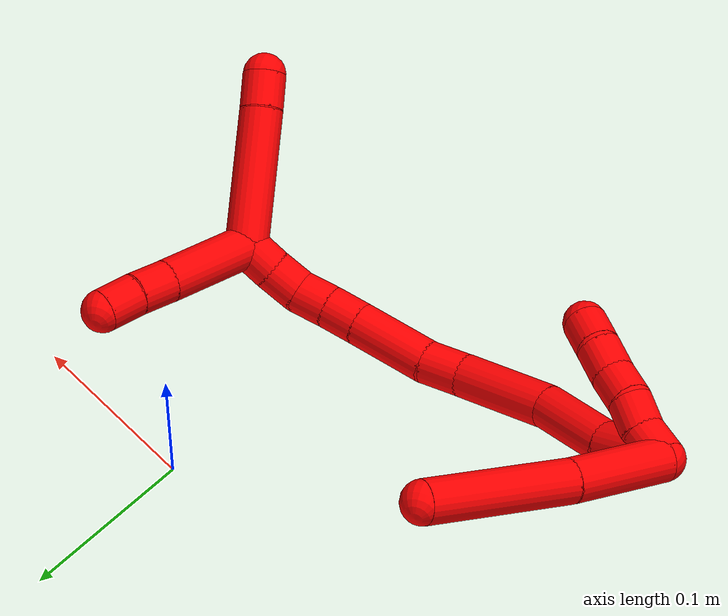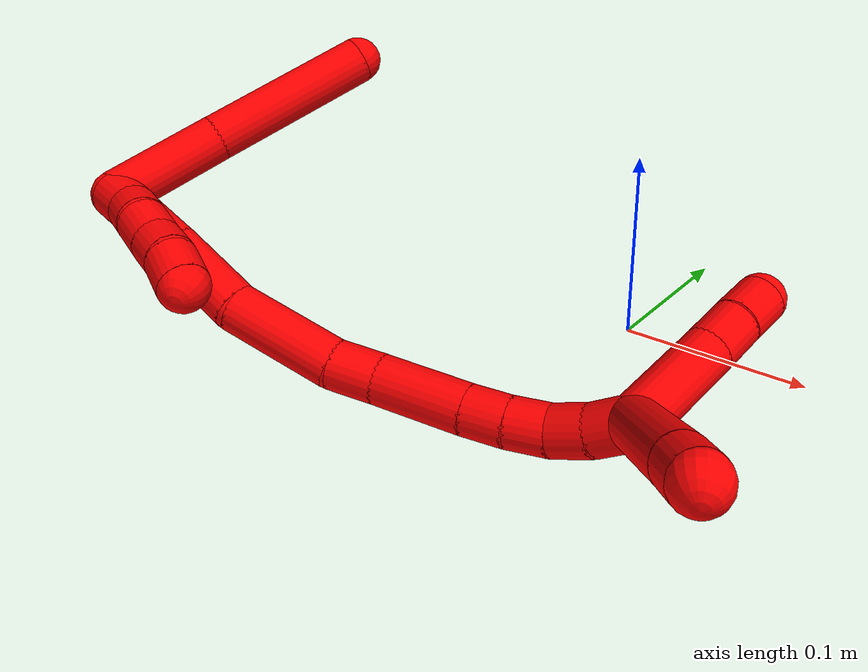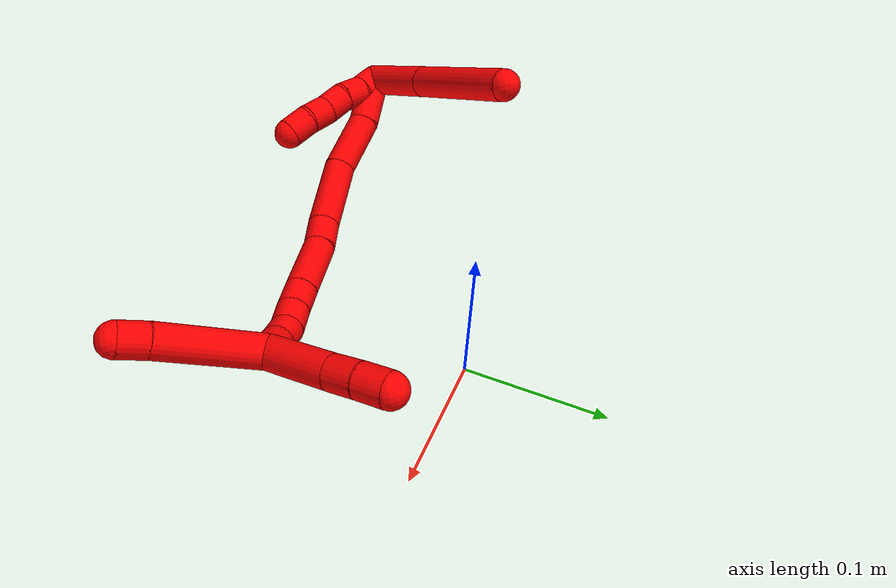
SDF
<sdf version="1.7">
 <world name="default">
  <model name="2">
   <static>0</static>
   <link name="2">
    <collision name="collision-cylinder-e_1_2_8">
     <pose>0.016396 0.013395 -0.021175 -2.57755 0.579421 -1.59921</pose>
     <geometry><cylinder><radius>0.0125</radius><length>0.059888</length></cylinder></geometry>
     <surface>
      <friction><ode><mu>1.16</mu><mu2>1.16</mu2><slip1>0</slip1><slip2>0</slip2></ode></friction>
      <contact><ode><kp>1e+06</kp><kd>1</kd><max_vel>0</max_vel><min_depth>0.001</min_depth></ode></contact>
     </surface>
    </collision>
    <visual name="visual-cylinder-e_1_2_8">
     <pose>0.016396 0.013395 -0.021175 -2.57755 0.579421 -1.59921</pose>
     <geometry><cylinder><radius>0.0125</radius><length>0.059888</length></cylinder></geometry>
     <material><ambient>1 0 0 1</ambient></material>
    </visual>
    <collision name="collision-cylinder-e_2_8_6">
     <pose>0.058533 0.049153 -0.071801 -2.49217 0.608131 -1.50062</pose>
     <geometry><cylinder><radius>0.0125</radius><length>0.090112</length></cylinder></geometry>
     <surface>
      <friction><ode><mu>1.16</mu><mu2>1.16</mu2><slip1>0</slip1><slip2>0</slip2></ode></friction>
      <contact><ode><kp>1e+06</kp><kd>1</kd><max_vel>0</max_vel><min_depth>0.001</min_depth></ode></contact>
     </surface>
    </collision>
    <visual name="visual-cylinder-e_2_8_6">
     <pose>0.058533 0.049153 -0.071801 -2.49217 0.608131 -1.50062</pose>
     <geometry><cylinder><radius>0.0125</radius><length>0.090112</length></cylinder></geometry>
     <material><ambient>1 0 0 1</ambient></material>
    </visual>
    <collision name="collision-cylinder-e_1_2_9">
     <pose>0.006721 0.003595 0.006473 -0.506911 0.737066 -0.199396</pose>
     <geometry><cylinder><radius>0.0125</radius><length>0.02</length></cylinder></geometry>
     <surface>
      <friction><ode><mu>1.16</mu><mu2>1.16</mu2><slip1>0</slip1><slip2>0</slip2></ode></friction>
      <contact><ode><kp>1e+06</kp><kd>1</kd><max_vel>0</max_vel><min_depth>0.001</min_depth></ode></contact>
     </surface>
    </collision>
    <visual name="visual-cylinder-e_1_2_9">
     <pose>0.006721 0.003595 0.006473 -0.506911 0.737066 -0.199396</pose>
     <geometry><cylinder><radius>0.0125</radius><length>0.02</length></cylinder></geometry>
     <material><ambient>1 0 0 1</ambient></material>
    </visual>
    <collision name="collision-cylinder-e_2_9_10">
     <pose>0.018233 0.011485 0.020602 -0.511314 0.4996 -0.133172</pose>
     <geometry><cylinder><radius>0.0125</radius><length>0.02</length></cylinder></geometry>
     <surface>
      <friction><ode><mu>1.16</mu><mu2>1.16</mu2><slip1>0</slip1><slip2>0</slip2></ode></friction>
      <contact><ode><kp>1e+06</kp><kd>1</kd><max_vel>0</max_vel><min_depth>0.001</min_depth></ode></contact>
     </surface>
    </collision>
    <visual name="visual-cylinder-e_2_9_10">
     <pose>0.018233 0.011485 0.020602 -0.511314 0.4996 -0.133172</pose>
     <geometry><cylinder><radius>0.0125</radius><length>0.02</length></cylinder></geometry>
     <material><ambient>1 0 0 1</ambient></material>
    </visual>
    <collision name="collision-cylinder-e_3_10_11">
     <pose>0.029371 0.018168 0.035606 -0.31427 0.68766 -0.113339</pose>
     <geometry><cylinder><radius>0.0125</radius><length>0.02</length></cylinder></geometry>
     <surface>
      <friction><ode><mu>1.16</mu><mu2>1.16</mu2><slip1>0</slip1><slip2>0</slip2></ode></friction>
      <contact><ode><kp>1e+06</kp><kd>1</kd><max_vel>0</max_vel><min_depth>0.001</min_depth></ode></contact>
     </surface>
    </collision>
    <visual name="visual-cylinder-e_3_10_11">
     <pose>0.029371 0.018168 0.035606 -0.31427 0.68766 -0.113339</pose>
     <geometry><cylinder><radius>0.0125</radius><length>0.02</length></cylinder></geometry>
     <material><ambient>1 0 0 1</ambient></material>
    </visual>
    <collision name="collision-cylinder-e_4_11_12">
     <pose>0.041312 0.024272 0.050365 -0.464685 0.59357 -0.14447</pose>
     <geometry><cylinder><radius>0.0125</radius><length>0.02</length></cylinder></geometry>
     <surface>
      <friction><ode><mu>1.16</mu><mu2>1.16</mu2><slip1>0</slip1><slip2>0</slip2></ode></friction>
      <contact><ode><kp>1e+06</kp><kd>1</kd><max_vel>0</max_vel><min_depth>0.001</min_depth></ode></contact>
     </surface>
    </collision>
    <visual name="visual-cylinder-e_4_11_12">
     <pose>0.041312 0.024272 0.050365 -0.464685 0.59357 -0.14447</pose>
     <geometry><cylinder><radius>0.0125</radius><length>0.02</length></cylinder></geometry>
     <material><ambient>1 0 0 1</ambient></material>
    </visual>
    <collision name="collision-cylinder-e_5_12_5">
     <pose>0.05277 0.029566 0.065719 -0.196264 0.626775 -0.063786</pose>
     <geometry><cylinder><radius>0.0125</radius><length>0.02</length></cylinder></geometry>
     <surface>
      <friction><ode><mu>1.16</mu><mu2>1.16</mu2><slip1>0</slip1><slip2>0</slip2></ode></friction>
      <contact><ode><kp>1e+06</kp><kd>1</kd><max_vel>0</max_vel><min_depth>0.001</min_depth></ode></contact>
     </surface>
    </collision>
    <visual name="visual-cylinder-e_5_12_5">
     <pose>0.05277 0.029566 0.065719 -0.196264 0.626775 -0.063786</pose>
     <geometry><cylinder><radius>0.0125</radius><length>0.02</length></cylinder></geometry>
     <material><ambient>1 0 0 1</ambient></material>
    </visual>
    <collision name="collision-cylinder-e_1_2_13">
     <pose>0.019752 -0.00187 0.007773 0.236119 1.18618 0.159558</pose>
     <geometry><cylinder><radius>0.0125</radius><length>0.042617</length></cylinder></geometry>
     <surface>
      <friction><ode><mu>1.16</mu><mu2>1.16</mu2><slip1>0</slip1><slip2>0</slip2></ode></friction>
      <contact><ode><kp>1e+06</kp><kd>1</kd><max_vel>0</max_vel><min_depth>0.001</min_depth></ode></contact>
     </surface>
    </collision>
    <visual name="visual-cylinder-e_1_2_13">
     <pose>0.019752 -0.00187 0.007773 0.236119 1.18618 0.159558</pose>
     <geometry><cylinder><radius>0.0125</radius><length>0.042617</length></cylinder></geometry>
     <material><ambient>1 0 0 1</ambient></material>
    </visual>
    <collision name="collision-cylinder-e_2_13_14">
     <pose>0.060249 -0.002413 0.028186 -0.104635 1.02117 -0.058645</pose>
     <geometry><cylinder><radius>0.0125</radius><length>0.048657</length></cylinder></geometry>
     <surface>
      <friction><ode><mu>1.16</mu><mu2>1.16</mu2><slip1>0</slip1><slip2>0</slip2></ode></friction>
      <contact><ode><kp>1e+06</kp><kd>1</kd><max_vel>0</max_vel><min_depth>0.001</min_depth></ode></contact>
     </surface>
    </collision>
    <visual name="visual-cylinder-e_2_13_14">
     <pose>0.060249 -0.002413 0.028186 -0.104635 1.02117 -0.058645</pose>
     <geometry><cylinder><radius>0.0125</radius><length>0.048657</length></cylinder></geometry>
     <material><ambient>1 0 0 1</ambient></material>
    </visual>
    <collision name="collision-cylinder-e_3_14_15">
     <pose>0.108156 0.002581 0.049589 -0.396207 1.2343 -0.282989</pose>
     <geometry><cylinder><radius>0.0125</radius><length>0.05755</length></cylinder></geometry>
     <surface>
      <friction><ode><mu>1.16</mu><mu2>1.16</mu2><slip1>0</slip1><slip2>0</slip2></ode></friction>
      <contact><ode><kp>1e+06</kp><kd>1</kd><max_vel>0</max_vel><min_depth>0.001</min_depth></ode></contact>
     </surface>
    </collision>
    <visual name="visual-cylinder-e_3_14_15">
     <pose>0.108156 0.002581 0.049589 -0.396207 1.2343 -0.282989</pose>
     <geometry><cylinder><radius>0.0125</radius><length>0.05755</length></cylinder></geometry>
     <material><ambient>1 0 0 1</ambient></material>
    </visual>
    <collision name="collision-cylinder-e_4_15_16">
     <pose>0.146621 0.009611 0.06048 -1.00729 1.23234 -0.744092</pose>
     <geometry><cylinder><radius>0.0125</radius><length>0.023969</length></cylinder></geometry>
     <surface>
      <friction><ode><mu>1.16</mu><mu2>1.16</mu2><slip1>0</slip1><slip2>0</slip2></ode></friction>
      <contact><ode><kp>1e+06</kp><kd>1</kd><max_vel>0</max_vel><min_depth>0.001</min_depth></ode></contact>
     </surface>
    </collision>
    <visual name="visual-cylinder-e_4_15_16">
     <pose>0.146621 0.009611 0.06048 -1.00729 1.23234 -0.744092</pose>
     <geometry><cylinder><radius>0.0125</radius><length>0.023969</length></cylinder></geometry>
     <material><ambient>1 0 0 1</ambient></material>
    </visual>
    <collision name="collision-cylinder-e_5_16_17">
     <pose>0.17833 0.021615 0.069415 -0.903333 1.07631 -0.563728</pose>
     <geometry><cylinder><radius>0.0125</radius><length>0.046361</length></cylinder></geometry>
     <surface>
      <friction><ode><mu>1.16</mu><mu2>1.16</mu2><slip1>0</slip1><slip2>0</slip2></ode></friction>
      <contact><ode><kp>1e+06</kp><kd>1</kd><max_vel>0</max_vel><min_depth>0.001</min_depth></ode></contact>
     </surface>
    </collision>
    <visual name="visual-cylinder-e_5_16_17">
     <pose>0.17833 0.021615 0.069415 -0.903333 1.07631 -0.563728</pose>
     <geometry><cylinder><radius>0.0125</radius><length>0.046361</length></cylinder></geometry>
     <material><ambient>1 0 0 1</ambient></material>
    </visual>
    <collision name="collision-cylinder-e_6_17_18">
     <pose>0.207812 0.034421 0.078935 -0.993883 1.06993 -0.621929</pose>
     <geometry><cylinder><radius>0.0125</radius><length>0.020699</length></cylinder></geometry>
     <surface>
      <friction><ode><mu>1.16</mu><mu2>1.16</mu2><slip1>0</slip1><slip2>0</slip2></ode></friction>
      <contact><ode><kp>1e+06</kp><kd>1</kd><max_vel>0</max_vel><min_depth>0.001</min_depth></ode></contact>
     </surface>
    </collision>
    <visual name="visual-cylinder-e_6_17_18">
     <pose>0.207812 0.034421 0.078935 -0.993883 1.06993 -0.621929</pose>
     <geometry><cylinder><radius>0.0125</radius><length>0.020699</length></cylinder></geometry>
     <material><ambient>1 0 0 1</ambient></material>
    </visual>
    <collision name="collision-cylinder-e_7_18_19">
     <pose>0.225692 0.043078 0.083523 -1.1749 1.0656 -0.748315</pose>
     <geometry><cylinder><radius>0.0125</radius><length>0.020117</length></cylinder></geometry>
     <surface>
      <friction><ode><mu>1.16</mu><mu2>1.16</mu2><slip1>0</slip1><slip2>0</slip2></ode></friction>
      <contact><ode><kp>1e+06</kp><kd>1</kd><max_vel>0</max_vel><min_depth>0.001</min_depth></ode></contact>
     </surface>
    </collision>
    <visual name="visual-cylinder-e_7_18_19">
     <pose>0.225692 0.043078 0.083523 -1.1749 1.0656 -0.748315</pose>
     <geometry><cylinder><radius>0.0125</radius><length>0.020117</length></cylinder></geometry>
     <material><ambient>1 0 0 1</ambient></material>
    </visual>
    <collision name="collision-cylinder-e_8_19_20">
     <pose>0.241419 0.054499 0.087436 -1.28511 0.764353 -0.584494</pose>
     <geometry><cylinder><radius>0.0125</radius><length>0.020011</length></cylinder></geometry>
     <surface>
      <friction><ode><mu>1.16</mu><mu2>1.16</mu2><slip1>0</slip1><slip2>0</slip2></ode></friction>
      <contact><ode><kp>1e+06</kp><kd>1</kd><max_vel>0</max_vel><min_depth>0.001</min_depth></ode></contact>
     </surface>
    </collision>
    <visual name="visual-cylinder-e_8_19_20">
     <pose>0.241419 0.054499 0.087436 -1.28511 0.764353 -0.584494</pose>
     <geometry><cylinder><radius>0.0125</radius><length>0.020011</length></cylinder></geometry>
     <material><ambient>1 0 0 1</ambient></material>
    </visual>
    <collision name="collision-cylinder-e_9_20_1">
     <pose>0.254105 0.069507 0.090789 -1.4091 0.613369 -0.525942</pose>
     <geometry><cylinder><radius>0.0125</radius><length>0.020018</length></cylinder></geometry>
     <surface>
      <friction><ode><mu>1.16</mu><mu2>1.16</mu2><slip1>0</slip1><slip2>0</slip2></ode></friction>
      <contact><ode><kp>1e+06</kp><kd>1</kd><max_vel>0</max_vel><min_depth>0.001</min_depth></ode></contact>
     </surface>
    </collision>
    <visual name="visual-cylinder-e_9_20_1">
     <pose>0.254105 0.069507 0.090789 -1.4091 0.613369 -0.525942</pose>
     <geometry><cylinder><radius>0.0125</radius><length>0.020018</length></cylinder></geometry>
     <material><ambient>1 0 0 1</ambient></material>
    </visual>
    <collision name="collision-cylinder-e_1_1_21">
     <pose>0.257819 0.101583 0.123468 -0.653164 -0.05179 0.017545</pose>
     <geometry><cylinder><radius>0.0125</radius><length>0.079086</length></cylinder></geometry>
     <surface>
      <friction><ode><mu>1.16</mu><mu2>1.16</mu2><slip1>0</slip1><slip2>0</slip2></ode></friction>
      <contact><ode><kp>1e+06</kp><kd>1</kd><max_vel>0</max_vel><min_depth>0.001</min_depth></ode></contact>
     </surface>
    </collision>
    <visual name="visual-cylinder-e_1_1_21">
     <pose>0.257819 0.101583 0.123468 -0.653164 -0.05179 0.017545</pose>
     <geometry><cylinder><radius>0.0125</radius><length>0.079086</length></cylinder></geometry>
     <material><ambient>1 0 0 1</ambient></material>
    </visual>
    <collision name="collision-cylinder-e_2_21_4">
     <pose>0.255792 0.131466 0.163473 -0.597826 0.001885 -0.000581</pose>
     <geometry><cylinder><radius>0.0125</radius><length>0.020914</length></cylinder></geometry>
     <surface>
      <friction><ode><mu>1.16</mu><mu2>1.16</mu2><slip1>0</slip1><slip2>0</slip2></ode></friction>
      <contact><ode><kp>1e+06</kp><kd>1</kd><max_vel>0</max_vel><min_depth>0.001</min_depth></ode></contact>
     </surface>
    </collision>
    <visual name="visual-cylinder-e_2_21_4">
     <pose>0.255792 0.131466 0.163473 -0.597826 0.001885 -0.000581</pose>
     <geometry><cylinder><radius>0.0125</radius><length>0.020914</length></cylinder></geometry>
     <material><ambient>1 0 0 1</ambient></material>
    </visual>
    <collision name="collision-cylinder-e_1_1_22">
     <pose>0.273446 0.085734 0.069251 -2.79907 0.510205 -1.97037</pose>
     <geometry><cylinder><radius>0.0125</radius><length>0.055613</length></cylinder></geometry>
     <surface>
      <friction><ode><mu>1.16</mu><mu2>1.16</mu2><slip1>0</slip1><slip2>0</slip2></ode></friction>
      <contact><ode><kp>1e+06</kp><kd>1</kd><max_vel>0</max_vel><min_depth>0.001</min_depth></ode></contact>
     </surface>
    </collision>
    <visual name="visual-cylinder-e_1_1_22">
     <pose>0.273446 0.085734 0.069251 -2.79907 0.510205 -1.97037</pose>
     <geometry><cylinder><radius>0.0125</radius><length>0.055613</length></cylinder></geometry>
     <material><ambient>1 0 0 1</ambient></material>
    </visual>
    <collision name="collision-cylinder-e_2_22_23">
     <pose>0.2923 0.097576 0.037153 -2.76153 0.487307 -1.82451</pose>
     <geometry><cylinder><radius>0.0125</radius><length>0.022528</length></cylinder></geometry>
     <surface>
      <friction><ode><mu>1.16</mu><mu2>1.16</mu2><slip1>0</slip1><slip2>0</slip2></ode></friction>
      <contact><ode><kp>1e+06</kp><kd>1</kd><max_vel>0</max_vel><min_depth>0.001</min_depth></ode></contact>
     </surface>
    </collision>
    <visual name="visual-cylinder-e_2_22_23">
     <pose>0.2923 0.097576 0.037153 -2.76153 0.487307 -1.82451</pose>
     <geometry><cylinder><radius>0.0125</radius><length>0.022528</length></cylinder></geometry>
     <material><ambient>1 0 0 1</ambient></material>
    </visual>
    <collision name="collision-cylinder-e_3_23_3">
     <pose>0.302953 0.103933 0.018776 -2.85779 0.514529 -2.14669</pose>
     <geometry><cylinder><radius>0.0125</radius><length>0.021859</length></cylinder></geometry>
     <surface>
      <friction><ode><mu>1.16</mu><mu2>1.16</mu2><slip1>0</slip1><slip2>0</slip2></ode></friction>
      <contact><ode><kp>1e+06</kp><kd>1</kd><max_vel>0</max_vel><min_depth>0.001</min_depth></ode></contact>
     </surface>
    </collision>
    <visual name="visual-cylinder-e_3_23_3">
     <pose>0.302953 0.103933 0.018776 -2.85779 0.514529 -2.14669</pose>
     <geometry><cylinder><radius>0.0125</radius><length>0.021859</length></cylinder></geometry>
     <material><ambient>1 0 0 1</ambient></material>
    </visual>
    <collision name="collision-sphere-3">
     <pose>0.308331 0.106597 0.009642 0 -0 0</pose>
     <geometry><sphere><radius>0.0125</radius></sphere></geometry>
     <surface>
      <friction><ode><mu>1.16</mu><mu2>1.16</mu2><slip1>0</slip1><slip2>0</slip2></ode></friction>
      <contact><ode><kp>1e+06</kp><kd>1</kd><max_vel>0</max_vel><min_depth>0.001</min_depth></ode></contact>
     </surface>
    </collision>
    <visual name="visual-sphere-3">
     <pose>0.308331 0.106597 0.009642 0 -0 0</pose>
     <geometry><sphere><radius>0.0125</radius></sphere></geometry>
     <material><ambient>1 0 0 1</ambient></material>
    </visual>
    <collision name="collision-sphere-23">
     <pose>0.297574 0.101269 0.02791 0 -0 0</pose>
     <geometry><sphere><radius>0.0125</radius></sphere></geometry>
     <surface>
      <friction><ode><mu>1.16</mu><mu2>1.16</mu2><slip1>0</slip1><slip2>0</slip2></ode></friction>
      <contact><ode><kp>1e+06</kp><kd>1</kd><max_vel>0</max_vel><min_depth>0.001</min_depth></ode></contact>
     </surface>
    </collision>
    <visual name="visual-sphere-23">
     <pose>0.297574 0.101269 0.02791 0 -0 0</pose>
     <geometry><sphere><radius>0.0125</radius></sphere></geometry>
     <material><ambient>1 0 0 1</ambient></material>
    </visual>
    <collision name="collision-sphere-22">
     <pose>0.287025 0.093884 0.046396 0 -0 0</pose>
     <geometry><sphere><radius>0.0125</radius></sphere></geometry>
     <surface>
      <friction><ode><mu>1.16</mu><mu2>1.16</mu2><slip1>0</slip1><slip2>0</slip2></ode></friction>
      <contact><ode><kp>1e+06</kp><kd>1</kd><max_vel>0</max_vel><min_depth>0.001</min_depth></ode></contact>
     </surface>
    </collision>
    <visual name="visual-sphere-22">
     <pose>0.287025 0.093884 0.046396 0 -0 0</pose>
     <geometry><sphere><radius>0.0125</radius></sphere></geometry>
     <material><ambient>1 0 0 1</ambient></material>
    </visual>
    <collision name="collision-sphere-4">
     <pose>0.255812 0.137352 0.172116 0 -0 0</pose>
     <geometry><sphere><radius>0.0125</radius></sphere></geometry>
     <surface>
      <friction><ode><mu>1.16</mu><mu2>1.16</mu2><slip1>0</slip1><slip2>0</slip2></ode></friction>
      <contact><ode><kp>1e+06</kp><kd>1</kd><max_vel>0</max_vel><min_depth>0.001</min_depth></ode></contact>
     </surface>
    </collision>
    <visual name="visual-sphere-4">
     <pose>0.255812 0.137352 0.172116 0 -0 0</pose>
     <geometry><sphere><radius>0.0125</radius></sphere></geometry>
     <material><ambient>1 0 0 1</ambient></material>
    </visual>
    <collision name="collision-sphere-21">
     <pose>0.255772 0.125581 0.154829 0 -0 0</pose>
     <geometry><sphere><radius>0.0125</radius></sphere></geometry>
     <surface>
      <friction><ode><mu>1.16</mu><mu2>1.16</mu2><slip1>0</slip1><slip2>0</slip2></ode></friction>
      <contact><ode><kp>1e+06</kp><kd>1</kd><max_vel>0</max_vel><min_depth>0.001</min_depth></ode></contact>
     </surface>
    </collision>
    <visual name="visual-sphere-21">
     <pose>0.255772 0.125581 0.154829 0 -0 0</pose>
     <geometry><sphere><radius>0.0125</radius></sphere></geometry>
     <material><ambient>1 0 0 1</ambient></material>
    </visual>
    <collision name="collision-sphere-1">
     <pose>0.259866 0.077585 0.092106 0 -0 0</pose>
     <geometry><sphere><radius>0.0125</radius></sphere></geometry>
     <surface>
      <friction><ode><mu>1.16</mu><mu2>1.16</mu2><slip1>0</slip1><slip2>0</slip2></ode></friction>
      <contact><ode><kp>1e+06</kp><kd>1</kd><max_vel>0</max_vel><min_depth>0.001</min_depth></ode></contact>
     </surface>
    </collision>
    <visual name="visual-sphere-1">
     <pose>0.259866 0.077585 0.092106 0 -0 0</pose>
     <geometry><sphere><radius>0.0125</radius></sphere></geometry>
     <material><ambient>1 0 0 1</ambient></material>
    </visual>
    <collision name="collision-sphere-11">
     <pose>0.035718 0.020557 0.042955 0 -0 0</pose>
     <geometry><sphere><radius>0.0125</radius></sphere></geometry>
     <surface>
      <friction><ode><mu>1.16</mu><mu2>1.16</mu2><slip1>0</slip1><slip2>0</slip2></ode></friction>
      <contact><ode><kp>1e+06</kp><kd>1</kd><max_vel>0</max_vel><min_depth>0.001</min_depth></ode></contact>
     </surface>
    </collision>
    <visual name="visual-sphere-11">
     <pose>0.035718 0.020557 0.042955 0 -0 0</pose>
     <geometry><sphere><radius>0.0125</radius></sphere></geometry>
     <material><ambient>1 0 0 1</ambient></material>
    </visual>
    <collision name="collision-sphere-10">
     <pose>0.023024 0.01578 0.028257 0 -0 0</pose>
     <geometry><sphere><radius>0.0125</radius></sphere></geometry>
     <surface>
      <friction><ode><mu>1.16</mu><mu2>1.16</mu2><slip1>0</slip1><slip2>0</slip2></ode></friction>
      <contact><ode><kp>1e+06</kp><kd>1</kd><max_vel>0</max_vel><min_depth>0.001</min_depth></ode></contact>
     </surface>
    </collision>
    <visual name="visual-sphere-10">
     <pose>0.023024 0.01578 0.028257 0 -0 0</pose>
     <geometry><sphere><radius>0.0125</radius></sphere></geometry>
     <material><ambient>1 0 0 1</ambient></material>
    </visual>
    <collision name="collision-sphere-6">
     <pose>0.084275 0.071515 -0.101252 0 -0 0</pose>
     <geometry><sphere><radius>0.0125</radius></sphere></geometry>
     <surface>
      <friction><ode><mu>1.16</mu><mu2>1.16</mu2><slip1>0</slip1><slip2>0</slip2></ode></friction>
      <contact><ode><kp>1e+06</kp><kd>1</kd><max_vel>0</max_vel><min_depth>0.001</min_depth></ode></contact>
     </surface>
    </collision>
    <visual name="visual-sphere-6">
     <pose>0.084275 0.071515 -0.101252 0 -0 0</pose>
     <geometry><sphere><radius>0.0125</radius></sphere></geometry>
     <material><ambient>1 0 0 1</ambient></material>
    </visual>
    <collision name="collision-sphere-9">
     <pose>0.013442 0.007189 0.012947 0 -0 0</pose>
     <geometry><sphere><radius>0.0125</radius></sphere></geometry>
     <surface>
      <friction><ode><mu>1.16</mu><mu2>1.16</mu2><slip1>0</slip1><slip2>0</slip2></ode></friction>
      <contact><ode><kp>1e+06</kp><kd>1</kd><max_vel>0</max_vel><min_depth>0.001</min_depth></ode></contact>
     </surface>
    </collision>
    <visual name="visual-sphere-9">
     <pose>0.013442 0.007189 0.012947 0 -0 0</pose>
     <geometry><sphere><radius>0.0125</radius></sphere></geometry>
     <material><ambient>1 0 0 1</ambient></material>
    </visual>
    <collision name="collision-sphere-2">
     <geometry><sphere><radius>0.0125</radius></sphere></geometry>
     <surface>
      <friction><ode><mu>1.16</mu><mu2>1.16</mu2><slip1>0</slip1><slip2>0</slip2></ode></friction>
      <contact><ode><kp>1e+06</kp><kd>1</kd><max_vel>0</max_vel><min_depth>0.001</min_depth></ode></contact>
     </surface>
    </collision>
    <visual name="visual-sphere-2">
     <geometry><sphere><radius>0.0125</radius></sphere></geometry>
     <material><ambient>1 0 0 1</ambient></material>
    </visual>
    <collision name="collision-sphere-19">
     <pose>0.234494 0.047569 0.0854 0 -0 0</pose>
     <geometry><sphere><radius>0.0125</radius></sphere></geometry>
     <surface>
      <friction><ode><mu>1.16</mu><mu2>1.16</mu2><slip1>0</slip1><slip2>0</slip2></ode></friction>
      <contact><ode><kp>1e+06</kp><kd>1</kd><max_vel>0</max_vel><min_depth>0.001</min_depth></ode></contact>
     </surface>
    </collision>
    <visual name="visual-sphere-19">
     <pose>0.234494 0.047569 0.0854 0 -0 0</pose>
     <geometry><sphere><radius>0.0125</radius></sphere></geometry>
     <material><ambient>1 0 0 1</ambient></material>
    </visual>
    <collision name="collision-sphere-8">
     <pose>0.032791 0.026791 -0.04235 0 -0 0</pose>
     <geometry><sphere><radius>0.0125</radius></sphere></geometry>
     <surface>
      <friction><ode><mu>1.16</mu><mu2>1.16</mu2><slip1>0</slip1><slip2>0</slip2></ode></friction>
      <contact><ode><kp>1e+06</kp><kd>1</kd><max_vel>0</max_vel><min_depth>0.001</min_depth></ode></contact>
     </surface>
    </collision>
    <visual name="visual-sphere-8">
     <pose>0.032791 0.026791 -0.04235 0 -0 0</pose>
     <geometry><sphere><radius>0.0125</radius></sphere></geometry>
     <material><ambient>1 0 0 1</ambient></material>
    </visual>
    <collision name="collision-sphere-12">
     <pose>0.046905 0.027987 0.057776 0 -0 0</pose>
     <geometry><sphere><radius>0.0125</radius></sphere></geometry>
     <surface>
      <friction><ode><mu>1.16</mu><mu2>1.16</mu2><slip1>0</slip1><slip2>0</slip2></ode></friction>
      <contact><ode><kp>1e+06</kp><kd>1</kd><max_vel>0</max_vel><min_depth>0.001</min_depth></ode></contact>
     </surface>
    </collision>
    <visual name="visual-sphere-12">
     <pose>0.046905 0.027987 0.057776 0 -0 0</pose>
     <geometry><sphere><radius>0.0125</radius></sphere></geometry>
     <material><ambient>1 0 0 1</ambient></material>
    </visual>
    <collision name="collision-sphere-5">
     <pose>0.058636 0.031146 0.073663 0 -0 0</pose>
     <geometry><sphere><radius>0.0125</radius></sphere></geometry>
     <surface>
      <friction><ode><mu>1.16</mu><mu2>1.16</mu2><slip1>0</slip1><slip2>0</slip2></ode></friction>
      <contact><ode><kp>1e+06</kp><kd>1</kd><max_vel>0</max_vel><min_depth>0.001</min_depth></ode></contact>
     </surface>
    </collision>
    <visual name="visual-sphere-5">
     <pose>0.058636 0.031146 0.073663 0 -0 0</pose>
     <geometry><sphere><radius>0.0125</radius></sphere></geometry>
     <material><ambient>1 0 0 1</ambient></material>
    </visual>
    <collision name="collision-sphere-13">
     <pose>0.039504 -0.003741 0.015547 0 -0 0</pose>
     <geometry><sphere><radius>0.0125</radius></sphere></geometry>
     <surface>
      <friction><ode><mu>1.16</mu><mu2>1.16</mu2><slip1>0</slip1><slip2>0</slip2></ode></friction>
      <contact><ode><kp>1e+06</kp><kd>1</kd><max_vel>0</max_vel><min_depth>0.001</min_depth></ode></contact>
     </surface>
    </collision>
    <visual name="visual-sphere-13">
     <pose>0.039504 -0.003741 0.015547 0 -0 0</pose>
     <geometry><sphere><radius>0.0125</radius></sphere></geometry>
     <material><ambient>1 0 0 1</ambient></material>
    </visual>
    <collision name="collision-sphere-14">
     <pose>0.080995 -0.001086 0.040825 0 -0 0</pose>
     <geometry><sphere><radius>0.0125</radius></sphere></geometry>
     <surface>
      <friction><ode><mu>1.16</mu><mu2>1.16</mu2><slip1>0</slip1><slip2>0</slip2></ode></friction>
      <contact><ode><kp>1e+06</kp><kd>1</kd><max_vel>0</max_vel><min_depth>0.001</min_depth></ode></contact>
     </surface>
    </collision>
    <visual name="visual-sphere-14">
     <pose>0.080995 -0.001086 0.040825 0 -0 0</pose>
     <geometry><sphere><radius>0.0125</radius></sphere></geometry>
     <material><ambient>1 0 0 1</ambient></material>
    </visual>
    <collision name="collision-sphere-15">
     <pose>0.135317 0.006247 0.058354 0 -0 0</pose>
     <geometry><sphere><radius>0.0125</radius></sphere></geometry>
     <surface>
      <friction><ode><mu>1.16</mu><mu2>1.16</mu2><slip1>0</slip1><slip2>0</slip2></ode></friction>
      <contact><ode><kp>1e+06</kp><kd>1</kd><max_vel>0</max_vel><min_depth>0.001</min_depth></ode></contact>
     </surface>
    </collision>
    <visual name="visual-sphere-15">
     <pose>0.135317 0.006247 0.058354 0 -0 0</pose>
     <geometry><sphere><radius>0.0125</radius></sphere></geometry>
     <material><ambient>1 0 0 1</ambient></material>
    </visual>
    <collision name="collision-sphere-16">
     <pose>0.157926 0.012975 0.062605 0 -0 0</pose>
     <geometry><sphere><radius>0.0125</radius></sphere></geometry>
     <surface>
      <friction><ode><mu>1.16</mu><mu2>1.16</mu2><slip1>0</slip1><slip2>0</slip2></ode></friction>
      <contact><ode><kp>1e+06</kp><kd>1</kd><max_vel>0</max_vel><min_depth>0.001</min_depth></ode></contact>
     </surface>
    </collision>
    <visual name="visual-sphere-16">
     <pose>0.157926 0.012975 0.062605 0 -0 0</pose>
     <geometry><sphere><radius>0.0125</radius></sphere></geometry>
     <material><ambient>1 0 0 1</ambient></material>
    </visual>
    <collision name="collision-sphere-17">
     <pose>0.198733 0.030256 0.076224 0 -0 0</pose>
     <geometry><sphere><radius>0.0125</radius></sphere></geometry>
     <surface>
      <friction><ode><mu>1.16</mu><mu2>1.16</mu2><slip1>0</slip1><slip2>0</slip2></ode></friction>
      <contact><ode><kp>1e+06</kp><kd>1</kd><max_vel>0</max_vel><min_depth>0.001</min_depth></ode></contact>
     </surface>
    </collision>
    <visual name="visual-sphere-17">
     <pose>0.198733 0.030256 0.076224 0 -0 0</pose>
     <geometry><sphere><radius>0.0125</radius></sphere></geometry>
     <material><ambient>1 0 0 1</ambient></material>
    </visual>
    <collision name="collision-sphere-18">
     <pose>0.21689 0.038586 0.081646 0 -0 0</pose>
     <geometry><sphere><radius>0.0125</radius></sphere></geometry>
     <surface>
      <friction><ode><mu>1.16</mu><mu2>1.16</mu2><slip1>0</slip1><slip2>0</slip2></ode></friction>
      <contact><ode><kp>1e+06</kp><kd>1</kd><max_vel>0</max_vel><min_depth>0.001</min_depth></ode></contact>
     </surface>
    </collision>
    <visual name="visual-sphere-18">
     <pose>0.21689 0.038586 0.081646 0 -0 0</pose>
     <geometry><sphere><radius>0.0125</radius></sphere></geometry>
     <material><ambient>1 0 0 1</ambient></material>
    </visual>
    <collision name="collision-sphere-20">
     <pose>0.248343 0.061429 0.089471 0 -0 0</pose>
     <geometry><sphere><radius>0.0125</radius></sphere></geometry>
     <surface>
      <friction><ode><mu>1.16</mu><mu2>1.16</mu2><slip1>0</slip1><slip2>0</slip2></ode></friction>
      <contact><ode><kp>1e+06</kp><kd>1</kd><max_vel>0</max_vel><min_depth>0.001</min_depth></ode></contact>
     </surface>
    </collision>
    <visual name="visual-sphere-20">
     <pose>0.248343 0.061429 0.089471 0 -0 0</pose>
     <geometry><sphere><radius>0.0125</radius></sphere></geometry>
     <material><ambient>1 0 0 1</ambient></material>
    </visual>
    <inertial>
     <pose>0.138557 0.042986 0.0403 0 -0 0</pose>
     <mass>0.75</mass>
     <inertia><ixx>1.3e-05</ixx><ixy>0</ixy><ixz>0</ixz><iyy>6e-05</iyy><iyz>0</iyz><izz>-0.000192</izz></inertia>
    </inertial>
   </link>
   <pose>-0.211349 -0.167569 0.082992 1.81242 0.412346 0.571073</pose>
  </model>
 </world>
</sdf>
